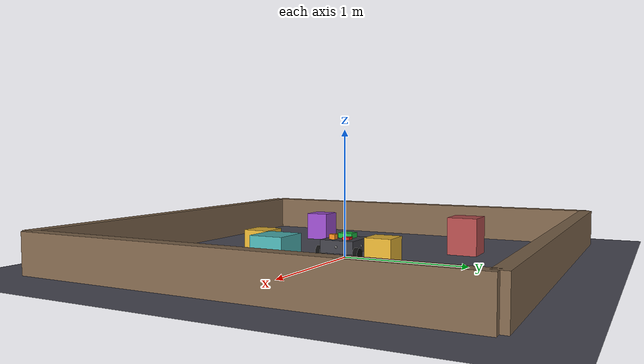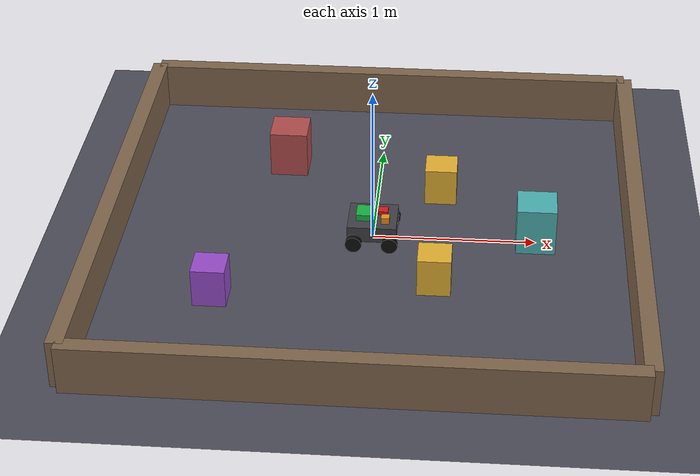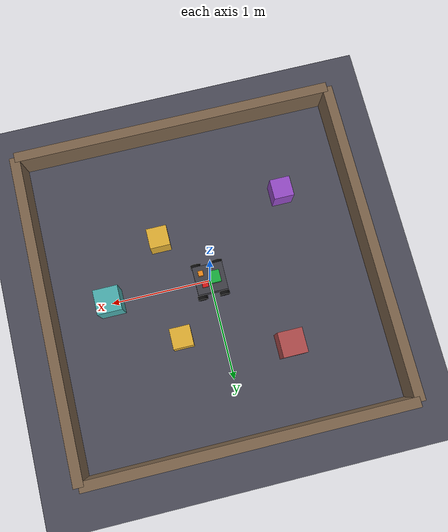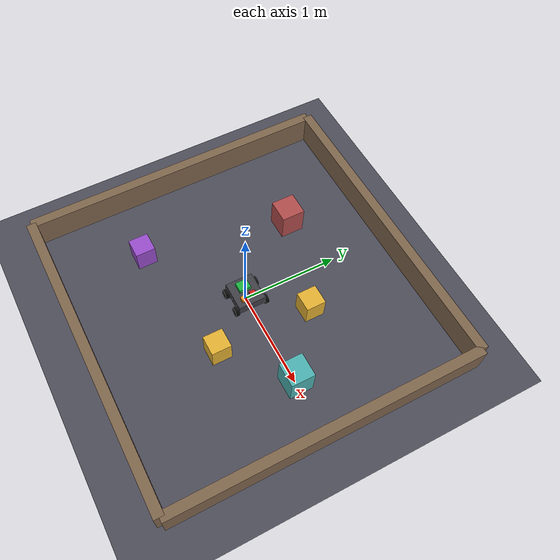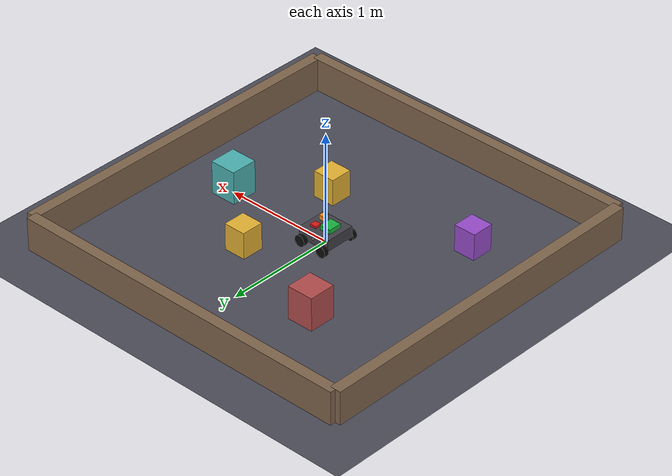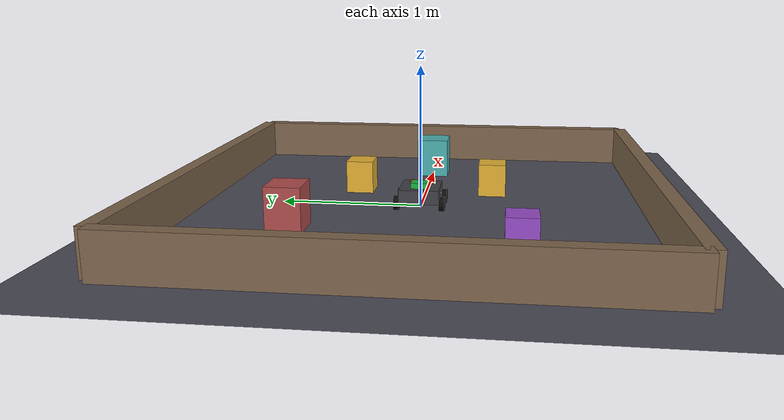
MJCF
<mujoco model="microbot">
  <compiler angle="radian"/>
  <option timestep="0.005"/>

  <default>
    <geom rgba="0.6 0.6 0.6 1"/>
  </default>

  <worldbody>
    <light pos="0 0 3" dir="0 0 -1" diffuse="0.9 0.9 0.9"/>
    <geom name="ground" type="plane" size="3 3 0.1" rgba="0.3 0.3 0.35 1"/>

    <!-- ===== obstacle arena (static) ===== -->
    <geom name="wall_n" type="box" size="1.6 0.05 0.15" pos="0  1.6 0.15" rgba="0.5 0.4 0.3 1"/>
    <geom name="wall_s" type="box" size="1.6 0.05 0.15" pos="0 -1.6 0.15" rgba="0.5 0.4 0.3 1"/>
    <geom name="wall_e" type="box" size="0.05 1.6 0.15" pos="1.6 0 0.15" rgba="0.5 0.4 0.3 1"/>
    <geom name="wall_w" type="box" size="0.05 1.6 0.15" pos="-1.6 0 0.15" rgba="0.5 0.4 0.3 1"/>
    <geom name="pillar_1" type="box" size="0.12 0.12 0.15" pos="1.0 0.0 0.15" rgba="0.3 0.7 0.7 1"/>
    <geom name="pillar_2" type="box" size="0.12 0.12 0.15" pos="-0.6 0.8 0.15" rgba="0.7 0.3 0.3 1"/>

    <body name="box_1" pos="0.4 -0.5 0.12">
      <freejoint name="box_1_free"/>
      <geom type="box" size="0.10 0.10 0.12" rgba="0.9 0.7 0.2 1"
            density="200" friction="1 0.02 0.001"/>
    </body>
    <body name="box_2" pos="0.4 0.5 0.12">
      <freejoint name="box_2_free"/>
      <geom type="box" size="0.10 0.10 0.12" rgba="0.9 0.7 0.2 1"
            density="200" friction="1 0.02 0.001"/>
    </body>
    <body name="box_3" pos="-0.9 -0.7 0.12">
      <freejoint name="box_3_free"/>
      <geom type="box" size="0.10 0.10 0.12" rgba="0.6 0.3 0.8 1"
            density="200" friction="1 0.02 0.001"/>
    </body>

    <!-- ===== robot (planar kinematic base at z=0.10) ===== -->
    <body name="base_link" pos="0 0 0.10">
      <joint name="slide_x" type="slide" axis="1 0 0"/>
      <joint name="slide_y" type="slide" axis="0 1 0"/>
      <joint name="yaw" type="hinge" axis="0 0 1"/>
      <geom type="box" size="0.15 0.14 0.05" rgba="0.25 0.25 0.28 1"/>

      <!-- wheels (visual; hinge joints spun by the driver) -->
      <body name="wheel_fl" pos="0.11 0.16 -0.05">
        <joint name="wheel_fl_joint" type="hinge" axis="0 1 0"/>
        <geom type="cylinder" size="0.05 0.02" euler="1.5708 0 0" rgba="0.05 0.05 0.05 1"/>
      </body>
      <body name="wheel_fr" pos="0.11 -0.16 -0.05">
        <joint name="wheel_fr_joint" type="hinge" axis="0 1 0"/>
        <geom type="cylinder" size="0.05 0.02" euler="1.5708 0 0" rgba="0.05 0.05 0.05 1"/>
      </body>
      <body name="wheel_rl" pos="-0.11 0.16 -0.05">
        <joint name="wheel_rl_joint" type="hinge" axis="0 1 0"/>
        <geom type="cylinder" size="0.05 0.02" euler="1.5708 0 0" rgba="0.05 0.05 0.05 1"/>
      </body>
      <body name="wheel_rr" pos="-0.11 -0.16 -0.05">
        <joint name="wheel_rr_joint" type="hinge" axis="0 1 0"/>
        <geom type="cylinder" size="0.05 0.02" euler="1.5708 0 0" rgba="0.05 0.05 0.05 1"/>
      </body>

      <!-- labelled parts -->
      <geom type="box" size="0.05 0.06 0.02" pos="-0.05 0    0.07" rgba="0.1 0.7 0.25 1"/>  <!-- battery -->
      <geom type="box" size="0.03 0.03 0.01" pos="0.06  0.05 0.06" rgba="0.85 0.1 0.1 1"/>  <!-- mcu -->
      <geom type="box" size="0.025 0.025 0.02" pos="0.08 -0.06 0.07" rgba="0.95 0.55 0.1 1"/><!-- motor -->

      <!-- ultrasonic sites: ray casts along site +z (front=+x, left=+y, right=-y) -->
      <site name="us_front" pos="0.15 0    0" euler="0 1.5708 0" size="0.01"/>
      <site name="us_left"  pos="0    0.14 0" euler="-1.5708 0 0" size="0.01"/>
      <site name="us_right" pos="0   -0.14 0" euler="1.5708 0 0" size="0.01"/>
    </body>
  </worldbody>

  <sensor>
    <rangefinder name="rf_front" site="us_front"/>
    <rangefinder name="rf_left"  site="us_left"/>
    <rangefinder name="rf_right" site="us_right"/>
  </sensor>
</mujoco>
